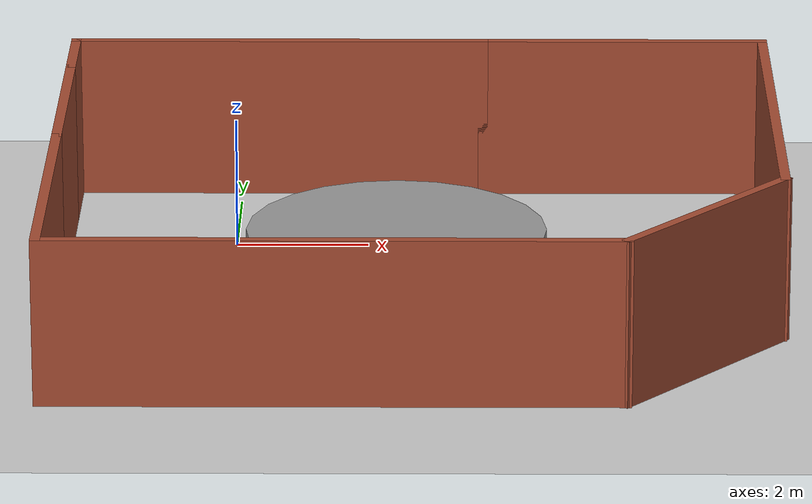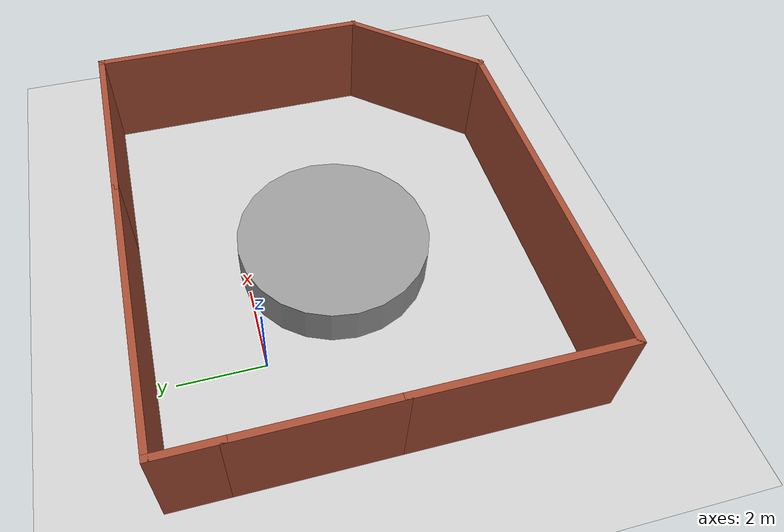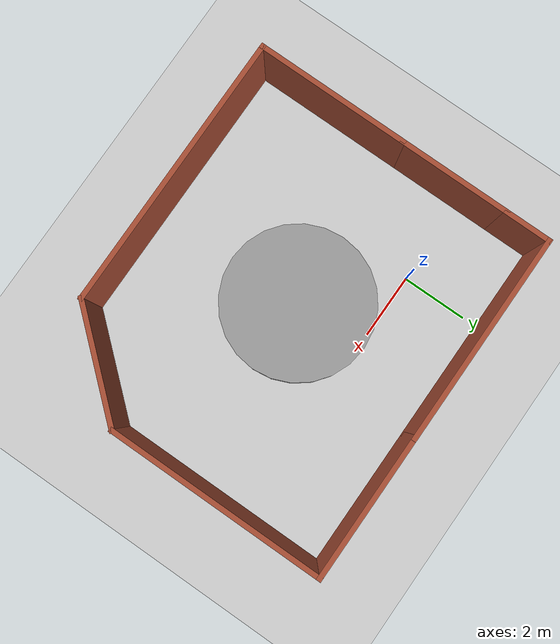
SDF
<sdf version="1.7">
 <world name="default">
  <light name="sun" type="directional">
   <pose>0 0 10 0 -0 0</pose>
   <diffuse>0.8 0.8 0.8 1</diffuse>
   <specular>0.2 0.2 0.2 1</specular>
   <attenuation>
    <range>1000</range>
    <constant>0.9</constant>
    <linear>0.01</linear>
    <quadratic>0.001</quadratic>
   </attenuation>
   <direction>-0.5 0.1 -0.9</direction>
   <spot><inner_angle>0</inner_angle><outer_angle>0</outer_angle><falloff>0</falloff></spot>
  </light>
  <model name="ground_plane">
   <static>1</static>
   <link name="link">
    <collision name="collision">
     <geometry><plane><normal>0 0 1</normal><size>100 100</size></plane></geometry>
     <surface>
      <contact><collide_bitmask>65535</collide_bitmask></contact>
      <friction><ode><mu>100</mu><mu2>50</mu2></ode></friction>
     </surface>
    </collision>
    <visual name="visual">
     <cast_shadows>0</cast_shadows>
     <geometry><plane><normal>0 0 1</normal><size>100 100</size></plane></geometry>
     <material>
      <script><uri>file://media/materials/scripts/gazebo.material</uri><name>Gazebo/Grey</name></script>
     </material>
    </visual>
   </link>
  </model>
  <gravity>0 0 -9.8</gravity>
  <magnetic_field>6e-06 2.3e-05 -4.2e-05</magnetic_field>
  <atmosphere type="adiabatic"/>
  <physics type="ode">
   <max_step_size>0.001</max_step_size>
   <real_time_factor>1</real_time_factor>
   <real_time_update_rate>1000</real_time_update_rate>
  </physics>
  <scene><ambient>0.4 0.4 0.4 1</ambient><background>0.7 0.7 0.7 1</background><shadows>1</shadows></scene>
  <audio><device>default</device></audio>
  <spherical_coordinates>
   <surface_model>EARTH_WGS84</surface_model>
   <latitude_deg>0</latitude_deg>
   <longitude_deg>0</longitude_deg>
   <elevation>0</elevation>
   <heading_deg>0</heading_deg>
  </spherical_coordinates>
  <model name="walls">
   <pose>2.77949 -2.16917 0 0 -0 0</pose>
   <link name="Wall_10">
    <collision name="Wall_10_Collision">
     <geometry><box><size>6.75 0.15 2.5</size></box></geometry>
     <pose>0 0 1.25 0 -0 0</pose>
    </collision>
    <visual name="Wall_10_Visual">
     <pose>0 0 1.25 0 -0 0</pose>
     <geometry><box><size>6.75 0.15 2.5</size></box></geometry>
     <material>
      <script><uri>file://media/materials/scripts/gazebo.material</uri><name>Gazebo/Bricks</name></script>
      <ambient>1 1 1 1</ambient>
     </material>
     <meta><layer>0</layer></meta>
    </visual>
    <pose>5.33459 1.36541 0 0 -0 -1.5708</pose>
   </link>
   <link name="Wall_19">
    <collision name="Wall_19_Collision">
     <geometry><box><size>4.75 0.15 2.5</size></box></geometry>
     <pose>0 0 1.25 0 -0 0</pose>
    </collision>
    <visual name="Wall_19_Visual">
     <pose>0 0 1.25 0 -0 0</pose>
     <geometry><box><size>4.75 0.15 2.5</size></box></geometry>
     <material>
      <script><uri>file://media/materials/scripts/gazebo.material</uri><name>Gazebo/Bricks</name></script>
      <ambient>1 1 1 1</ambient>
     </material>
     <meta><layer>0</layer></meta>
    </visual>
    <pose>-5.36541 -2.33459 0 0 -0 -1.5708</pose>
   </link>
   <link name="Wall_23">
    <collision name="Wall_23_Collision">
     <geometry><box><size>8.5 0.15 2.5</size></box></geometry>
     <pose>0 0 1.25 0 -0 0</pose>
    </collision>
    <visual name="Wall_23_Visual">
     <pose>0 0 1.25 0 -0 0</pose>
     <geometry><box><size>8.5 0.15 2.5</size></box></geometry>
     <material>
      <script><uri>file://media/materials/scripts/gazebo.material</uri><name>Gazebo/Bricks</name></script>
      <ambient>1 1 1 1</ambient>
     </material>
     <meta><layer>0</layer></meta>
    </visual>
    <pose>-1.19041 -4.6346 0 0 -0 0</pose>
   </link>
   <link name="Wall_26">
    <collision name="Wall_26_Collision">
     <geometry><box><size>3.72946 0.15 2.5</size></box></geometry>
     <pose>0 0 1.25 0 -0 0</pose>
    </collision>
    <visual name="Wall_26_Visual">
     <pose>0 0 1.25 0 -0 0</pose>
     <geometry><box><size>3.72946 0.15 2.5</size></box></geometry>
     <material>
      <script><uri>file://media/materials/scripts/gazebo.material</uri><name>Gazebo/Bricks</name></script>
      <ambient>1 1 1 1</ambient>
     </material>
     <meta><layer>0</layer></meta>
    </visual>
    <pose>4.15959 -3.28459 0 0 -0 0.854594</pose>
   </link>
   <link name="Wall_4">
    <collision name="Wall_4_Collision">
     <geometry><box><size>3.5 0.15 2.5</size></box></geometry>
     <pose>0 0 1.25 0 -0 0</pose>
    </collision>
    <visual name="Wall_4_Visual">
     <pose>0 0 1.25 0 -0 0</pose>
     <geometry><box><size>3.5 0.15 2.5</size></box></geometry>
     <material>
      <script><uri>file://media/materials/scripts/gazebo.material</uri><name>Gazebo/Bricks</name></script>
      <ambient>1 1 1 1</ambient>
     </material>
     <meta><layer>0</layer></meta>
    </visual>
    <pose>-5.36541 1.64041 0 0 -0 1.5708</pose>
   </link>
   <link name="Wall_5">
    <collision name="Wall_5_Collision">
     <geometry><box><size>1.5 0.15 2.5</size></box></geometry>
     <pose>0 0 1.25 0 -0 0</pose>
    </collision>
    <visual name="Wall_5_Visual">
     <pose>0 0 1.25 0 -0 0</pose>
     <geometry><box><size>1.5 0.15 2.5</size></box></geometry>
     <material>
      <script><uri>file://media/materials/scripts/gazebo.material</uri><name>Gazebo/Bricks</name></script>
      <ambient>1 1 1 1</ambient>
     </material>
     <meta><layer>0</layer></meta>
    </visual>
    <pose>-5.36541 3.99041 0 0 -0 1.5708</pose>
   </link>
   <link name="Wall_6">
    <collision name="Wall_6_Collision">
     <geometry><box><size>6.5 0.15 2.5</size></box></geometry>
     <pose>0 0 1.25 0 -0 0</pose>
    </collision>
    <visual name="Wall_6_Visual">
     <pose>0 0 1.25 0 -0 0</pose>
     <geometry><box><size>6.5 0.15 2.5</size></box></geometry>
     <material>
      <script><uri>file://media/materials/scripts/gazebo.material</uri><name>Gazebo/Bricks</name></script>
      <ambient>1 1 1 1</ambient>
     </material>
     <meta><layer>0</layer></meta>
    </visual>
    <pose>-2.19041 4.66541 0 0 -0 0</pose>
   </link>
   <link name="Wall_8">
    <collision name="Wall_8_Collision">
     <geometry><box><size>4.5 0.15 2.5</size></box></geometry>
     <pose>0 0 1.25 0 -0 0</pose>
    </collision>
    <visual name="Wall_8_Visual">
     <pose>0 0 1.25 0 -0 0</pose>
     <geometry><box><size>4.5 0.15 2.5</size></box></geometry>
     <material>
      <script><uri>file://media/materials/scripts/gazebo.material</uri><name>Gazebo/Bricks</name></script>
      <ambient>1 1 1 1</ambient>
     </material>
     <meta><layer>0</layer></meta>
    </visual>
    <pose>3.15959 4.66541 0 0 -0 0</pose>
   </link>
   <static>1</static>
  </model>
  <model name="unit_cylinder">
   <pose>2.45315 -2.11163 0.499984 7e-06 -7e-06 -0.00034</pose>
   <link name="link">
    <inertial>
     <mass>1</mass>
     <inertia><ixx>0.145833</ixx><ixy>0</ixy><ixz>0</ixz><iyy>0.145833</iyy><iyz>0</iyz><izz>0.125</izz></inertia>
    </inertial>
    <collision name="collision">
     <geometry><cylinder><radius>2.24453</radius><length>1</length></cylinder></geometry>
    </collision>
    <visual name="visual">
     <geometry><cylinder><radius>2.24453</radius><length>1</length></cylinder></geometry>
     <material>
      <script><name>Gazebo/Grey</name><uri>file://media/materials/scripts/gazebo.material</uri></script>
     </material>
    </visual>
   </link>
  </model>
 </world>
</sdf>
